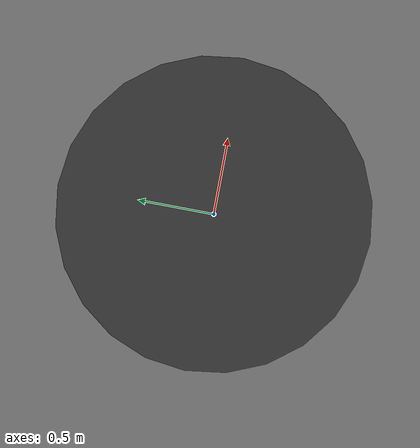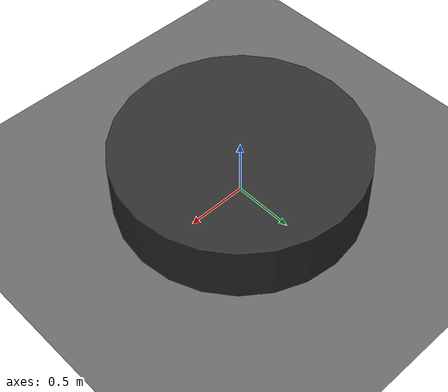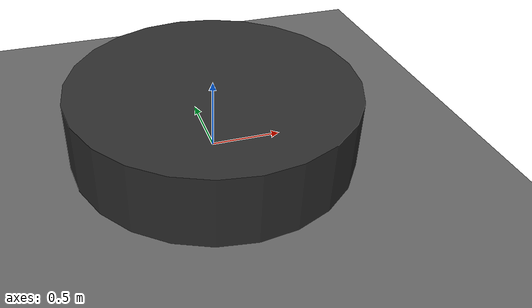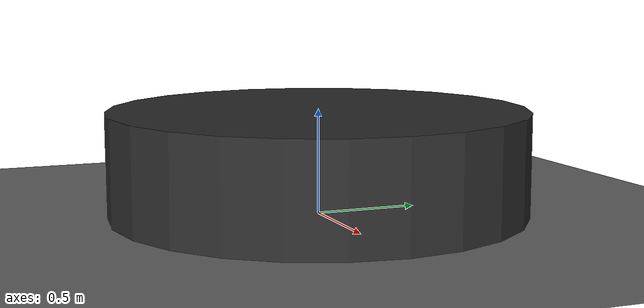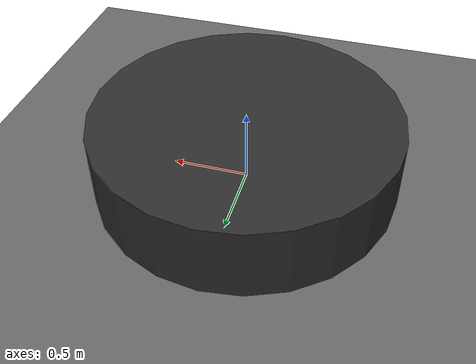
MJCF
<mujoco model="pioneer">
   <compiler angle="degree" coordinate="local"/>

    <worldbody>
        <body name="ground" pos="0 0 0">
            <geom pos="0 0 0" rgba="0.4 0.4 0.4 1" size="8 8 1" type="plane"/>
        </body>

        <!-- everything related to the robot itself must have the 'robot:' prefix -->
        <body name="robot:base" pos="0 0 0">
            <geom size="1 0.25" pos="0 0 0.25" rgba="0.175 0.175 0.175 1" type="cylinder"/>

        </body>

    </worldbody>
</mujoco>
